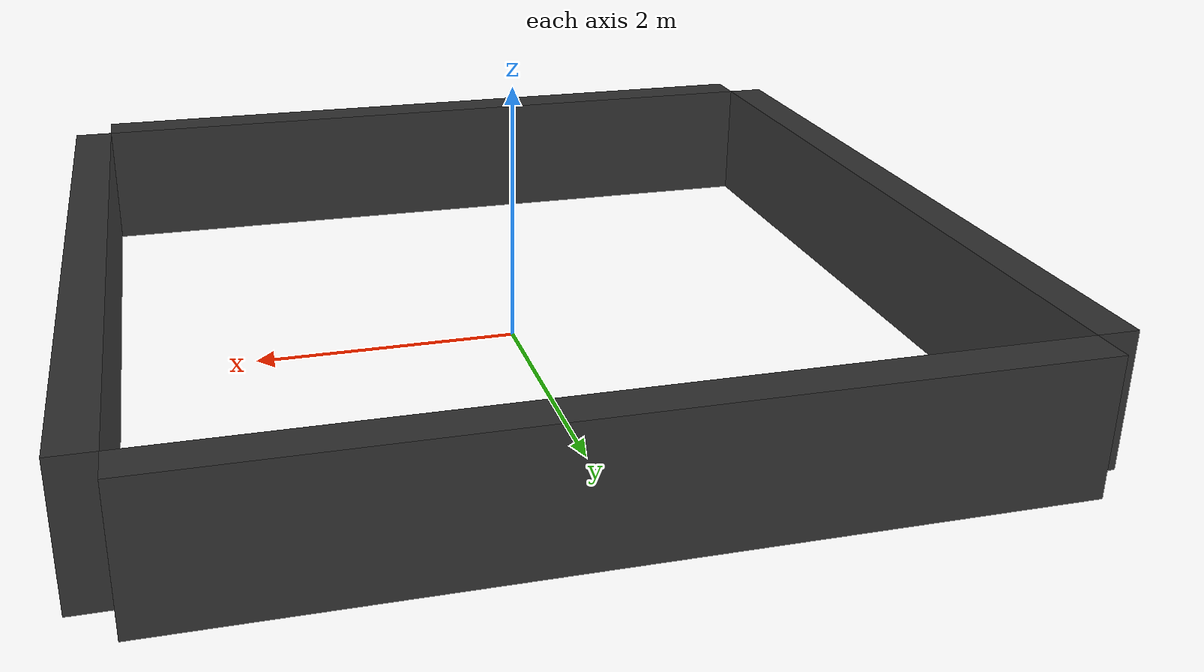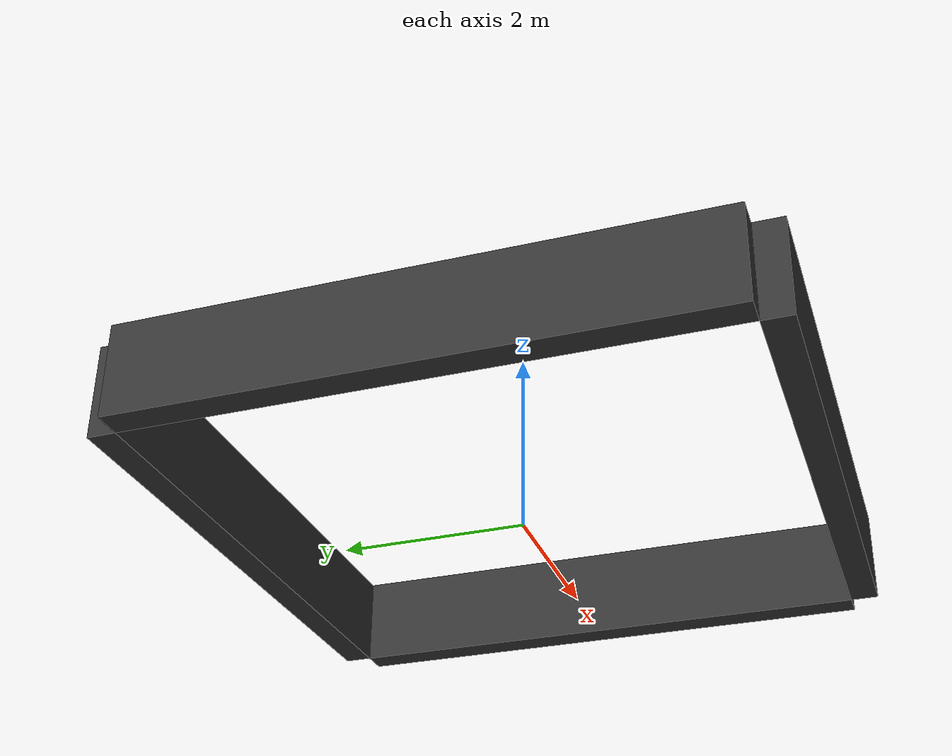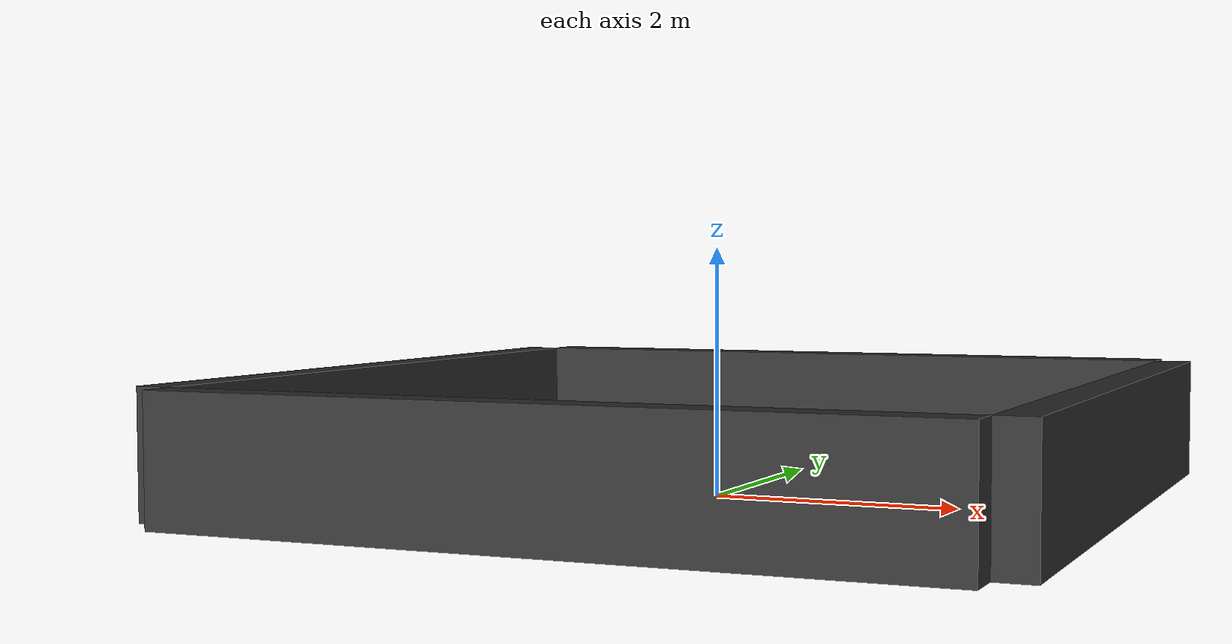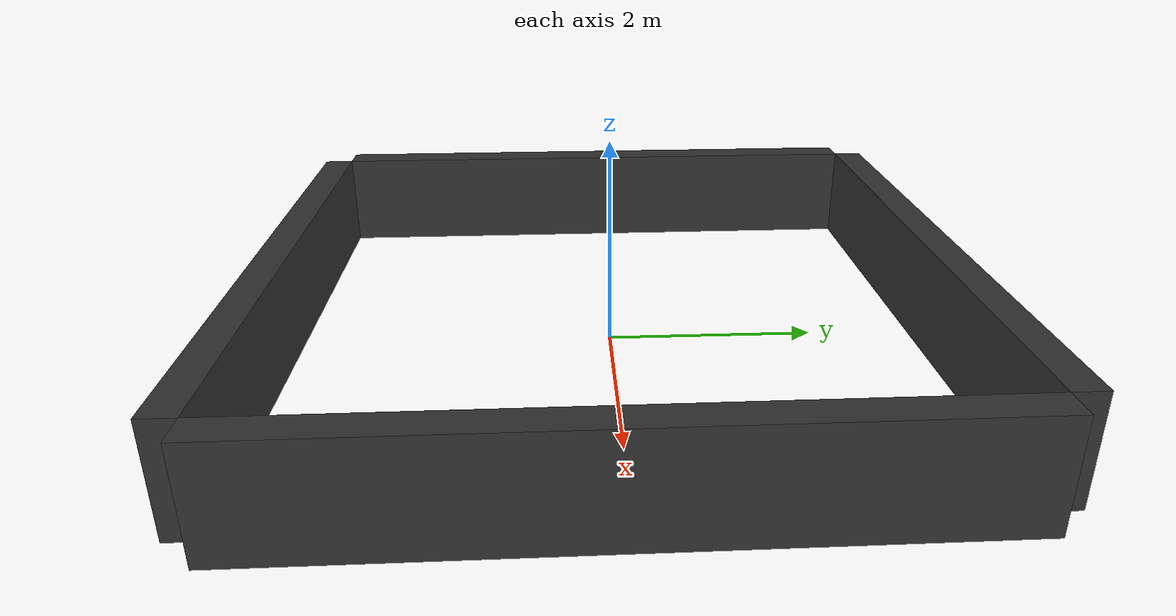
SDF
<?xml version="1.0"?>
<sdf version="1.10">

    <model name="walls">

      <pose>0 0 0 0 0 0</pose>

      <!-- Top wall -->
      <link name="top_wall">
        <pose>3.15 0 0.5 0 0 0</pose>
        <collision name="top_wall_collision">
          <geometry><box><size>0.3 6 1</size></box></geometry>
        </collision>
        <visual name="top_wall_visual">
          <geometry><box><size>0.3 6 1</size></box></geometry>
          <material><ambient>0.1 0.1 0.1 1</ambient><diffuse>0.2 0.2 0.2 1</diffuse><specular>0.1 0.1 0.1 1</specular></material>
        </visual>
      </link>

      <!-- Bottom wall -->
      <link name="bottom_wall">
        <pose>-3.15 0 0.5 0 0 0</pose>
        <collision name="bottom_wall_collision">
          <geometry><box><size>0.3 6 1</size></box></geometry>
        </collision>
        <visual name="bottom_wall_visual">
          <geometry><box><size>0.3 6 1</size></box></geometry>
          <material><ambient>0.1 0.1 0.1 1</ambient><diffuse>0.2 0.2 0.2 1</diffuse><specular>0.1 0.1 0.1 1</specular></material>
        </visual>
      </link>

      <!-- Left wall -->
      <link name="left_wall">
        <pose>0 -3.15 0.5 0 0 0</pose>
        <collision name="left_wall_collision">
          <geometry><box><size>6 0.3 1</size></box></geometry>
        </collision>
        <visual name="left_wall_visual">
          <geometry><box><size>6 0.3 1</size></box></geometry>
          <material><ambient>0.1 0.1 0.1 1</ambient><diffuse>0.2 0.2 0.2 1</diffuse><specular>0.1 0.1 0.1 1</specular></material>
        </visual>
      </link>

      <!-- Right wall -->
      <link name="right_wall">
        <pose>0 3.15 0.5 0 0 0</pose>
        <collision name="right_wall_collision">
          <geometry><box><size>6 0.3 1</size></box></geometry>
        </collision>
        <visual name="right_wall_visual">
          <geometry><box><size>6 0.3 1</size></box></geometry>
          <material><ambient>0.1 0.1 0.1 1</ambient><diffuse>0.2 0.2 0.2 1</diffuse><specular>0.1 0.1 0.1 1</specular></material>
        </visual>
      </link>

      <static>true</static>
      <self_collide>false</self_collide>

    </model>

</sdf>
